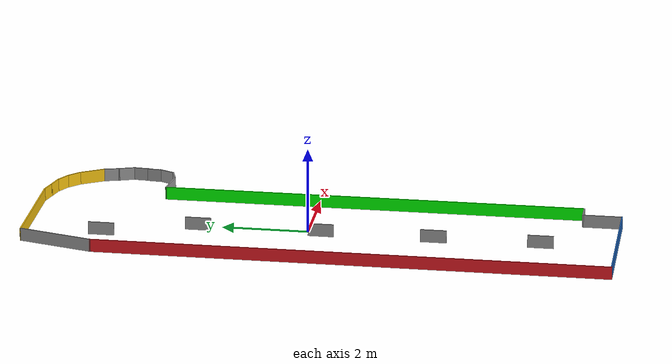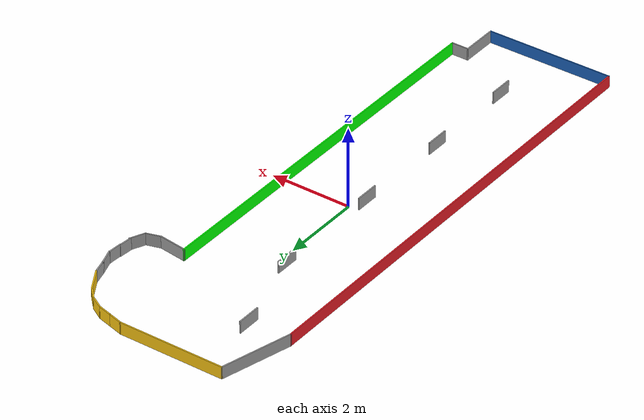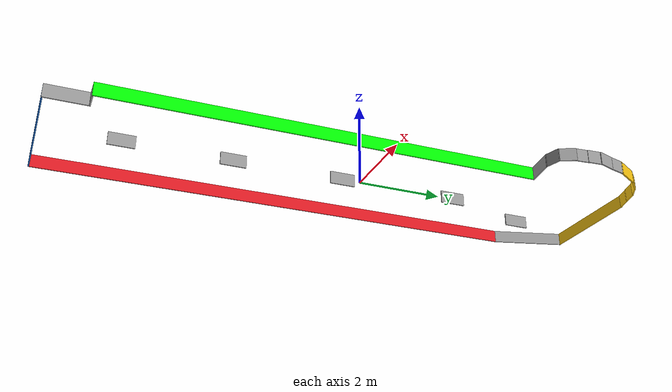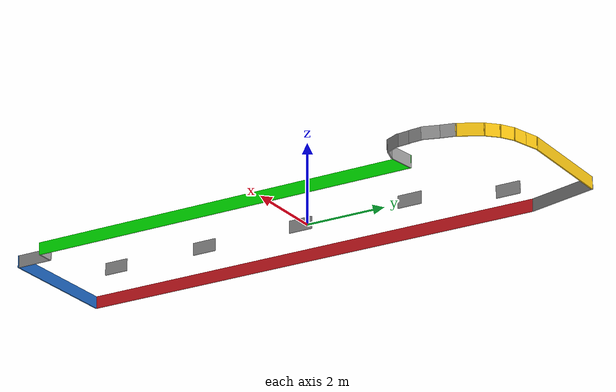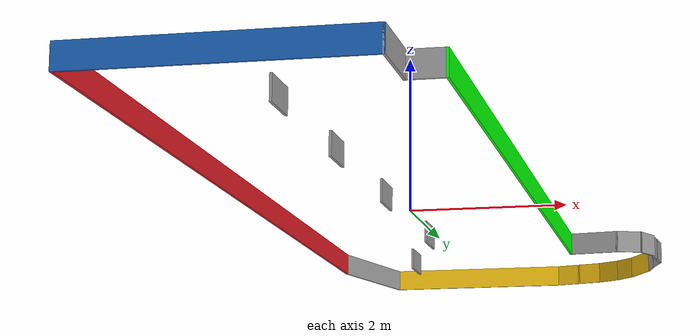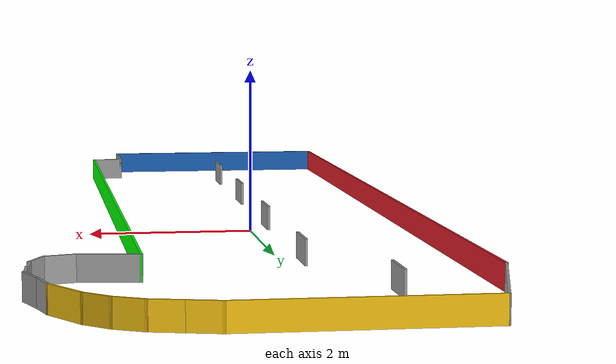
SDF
<?xml version='1.0'?>
<sdf version='1.7'>
  <model name='coloured_mock'>
    <pose>0.45155 -0.357638 0 0 -0 0</pose>
    <link name='Wall_1'>
      <collision name='Wall_1_Collision'>
        <geometry>
          <box>
            <size>11.88 0.03 0.3</size>
          </box>
        </geometry>
        <pose>0 0 0.15 0 -0 0</pose>
      </collision>
      <visual name='Wall_1_Visual'>
        <pose>0 0 0.15 0 -0 0</pose>
        <geometry>
          <box>
            <size>11.88 0.03 0.3</size>
          </box>
        </geometry>
        <material>
          <script>
            <uri>file://media/materials/scripts/gazebo.material</uri>
            <name>Gazebo/Grey</name>
          </script>
          <ambient>0.878431 0.105882 0.141176 1</ambient>
        </material>
        <meta>
          <layer>0</layer>
        </meta>
      </visual>
      <pose>-2.40355 -0.856016 0 0 -0 -1.5708</pose>
    </link>
    <link name='Wall_11'>
      <collision name='Wall_11_Collision'>
        <geometry>
          <box>
            <size>9.88 0.03 0.3</size>
          </box>
        </geometry>
        <pose>0 0 0.15 0 -0 0</pose>
      </collision>
      <visual name='Wall_11_Visual'>
        <pose>0 0 0.15 0 -0 0</pose>
        <geometry>
          <box>
            <size>9.88 0.03 0.3</size>
          </box>
        </geometry>
        <material>
          <script>
            <uri>file://media/materials/scripts/gazebo.material</uri>
            <name>Gazebo/Grey</name>
          </script>
          <ambient>0 1 0 1</ambient>
        </material>
        <meta>
          <layer>0</layer>
        </meta>
      </visual>
      <pose>1.18445 -0.952189 0 0 -0 1.5708</pose>
    </link>
    <link name='Wall_13'>
      <collision name='Wall_13_Collision'>
        <geometry>
          <box>
            <size>1.8 0.03 0.3</size>
          </box>
        </geometry>
        <pose>0 0 0.15 0 -0 0</pose>
      </collision>
      <visual name='Wall_13_Visual'>
        <pose>0 0 0.15 0 -0 0</pose>
        <geometry>
          <box>
            <size>1.8 0.03 0.3</size>
          </box>
        </geometry>
        <material>
          <script>
            <uri>file://media/materials/scripts/gazebo.material</uri>
            <name>Gazebo/Grey</name>
          </script>
          <ambient>1 1 1 1</ambient>
        </material>
        <meta>
          <layer>0</layer>
        </meta>
      </visual>
      <pose>-2.17209 5.92318 0 0 -0 1.30618</pose>
    </link>
    <link name='Wall_15'>
      <collision name='Wall_15_Collision'>
        <geometry>
          <box>
            <size>2.63 0.03 0.3</size>
          </box>
        </geometry>
        <pose>0 0 0.15 0 -0 0</pose>
      </collision>
      <visual name='Wall_15_Visual'>
        <pose>0 0 0.15 0 -0 0</pose>
        <geometry>
          <box>
            <size>2.63 0.03 0.3</size>
          </box>
        </geometry>
        <material>
          <script>
            <uri>file://media/materials/scripts/gazebo.material</uri>
            <name>Gazebo/Grey</name>
          </script>
          <ambient>0.960784 0.760784 0.0666667 1</ambient>
        </material>
        <meta>
          <layer>0</layer>
        </meta>
      </visual>
      <pose>-0.640588 6.77751 0 0 -0 0.000101</pose>
    </link>
    <link name='Wall_25'>
      <collision name='Wall_25_Collision'>
        <geometry>
          <box>
            <size>0.379994 0.03 0.3</size>
          </box>
        </geometry>
        <pose>0 0 0.15 0 -0 0</pose>
      </collision>
      <visual name='Wall_25_Visual'>
        <pose>0 0 0.15 0 -0 0</pose>
        <geometry>
          <box>
            <size>0.379994 0.03 0.3</size>
          </box>
        </geometry>
        <material>
          <script>
            <uri>file://media/materials/scripts/gazebo.material</uri>
            <name>Gazebo/Grey</name>
          </script>
          <ambient>0.960784 0.760784 0.0666667 1</ambient>
        </material>
        <meta>
          <layer>0</layer>
        </meta>
      </visual>
      <pose>0.82845 6.73214 0 0 -0 -0.262995</pose>
    </link>
    <link name='Wall_26'>
      <collision name='Wall_26_Collision'>
        <geometry>
          <box>
            <size>0.379958 0.03 0.3</size>
          </box>
        </geometry>
        <pose>0 0 0.15 0 -0 0</pose>
      </collision>
      <visual name='Wall_26_Visual'>
        <pose>0 0 0.15 0 -0 0</pose>
        <geometry>
          <box>
            <size>0.379958 0.03 0.3</size>
          </box>
        </geometry>
        <material>
          <script>
            <uri>file://media/materials/scripts/gazebo.material</uri>
            <name>Gazebo/Grey</name>
          </script>
          <ambient>0.960784 0.760784 0.0666667 1</ambient>
        </material>
        <meta>
          <layer>0</layer>
        </meta>
      </visual>
      <pose>1.16645 6.64164 0 0 -0 -0.260234</pose>
    </link>
    <link name='Wall_27'>
      <collision name='Wall_27_Collision'>
        <geometry>
          <box>
            <size>0.38028 0.03 0.3</size>
          </box>
        </geometry>
        <pose>0 0 0.15 0 -0 0</pose>
      </collision>
      <visual name='Wall_27_Visual'>
        <pose>0 0 0.15 0 -0 0</pose>
        <geometry>
          <box>
            <size>0.38028 0.03 0.3</size>
          </box>
        </geometry>
        <material>
          <script>
            <uri>file://media/materials/scripts/gazebo.material</uri>
            <name>Gazebo/Grey</name>
          </script>
          <ambient>0.960784 0.760784 0.0666667 1</ambient>
        </material>
        <meta>
          <layer>0</layer>
        </meta>
      </visual>
      <pose>1.48695 6.50914 0 0 -0 -0.523754</pose>
    </link>
    <link name='Wall_28'>
      <collision name='Wall_28_Collision'>
        <geometry>
          <box>
            <size>0.380436 0.03 0.3</size>
          </box>
        </geometry>
        <pose>0 0 0.15 0 -0 0</pose>
      </collision>
      <visual name='Wall_28_Visual'>
        <pose>0 0 0.15 0 -0 0</pose>
        <geometry>
          <box>
            <size>0.380436 0.03 0.3</size>
          </box>
        </geometry>
        <material>
          <script>
            <uri>file://media/materials/scripts/gazebo.material</uri>
            <name>Gazebo/Grey</name>
          </script>
          <ambient>0.960784 0.760784 0.0666667 1</ambient>
        </material>
        <meta>
          <layer>0</layer>
        </meta>
      </visual>
      <pose>1.76245 6.29764 0 0 -0 -0.785398</pose>
    </link>
    <link name='Wall_29'>
      <collision name='Wall_29_Collision'>
        <geometry>
          <box>
            <size>0.629768 0.03 0.3</size>
          </box>
        </geometry>
        <pose>0 0 0.15 0 -0 0</pose>
      </collision>
      <visual name='Wall_29_Visual'>
        <pose>0 0 0.15 0 -0 0</pose>
        <geometry>
          <box>
            <size>0.629768 0.03 0.3</size>
          </box>
        </geometry>
        <material>
          <script>
            <uri>file://media/materials/scripts/gazebo.material</uri>
            <name>Gazebo/Grey</name>
          </script>
          <ambient>0.960784 0.760784 0.0666667 1</ambient>
        </material>
        <meta>
          <layer>0</layer>
        </meta>
      </visual>
      <pose>2.03645 5.91364 0 0 -0 -1.04752</pose>
    </link>
    <link name='Wall_30'>
      <collision name='Wall_30_Collision'>
        <geometry>
          <box>
            <size>0.379777 0.03 0.3</size>
          </box>
        </geometry>
        <pose>0 0 0.15 0 -0 0</pose>
      </collision>
      <visual name='Wall_30_Visual'>
        <pose>0 0 0.15 0 -0 0</pose>
        <geometry>
          <box>
            <size>0.379777 0.03 0.3</size>
          </box>
        </geometry>
        <material>
          <script>
            <uri>file://media/materials/scripts/gazebo.material</uri>
            <name>Gazebo/Grey</name>
          </script>
          <ambient>1 1 1 1</ambient>
        </material>
        <meta>
          <layer>0</layer>
        </meta>
      </visual>
      <pose>2.23145 5.48464 0 0 -0 -1.31056</pose>
    </link>
    <link name='Wall_31'>
      <collision name='Wall_31_Collision'>
        <geometry>
          <box>
            <size>0.426235 0.03 0.3</size>
          </box>
        </geometry>
        <pose>0 0 0.15 0 -0 0</pose>
      </collision>
      <visual name='Wall_31_Visual'>
        <pose>0 0 0.15 0 -0 0</pose>
        <geometry>
          <box>
            <size>0.426235 0.03 0.3</size>
          </box>
        </geometry>
        <material>
          <script>
            <uri>file://media/materials/scripts/gazebo.material</uri>
            <name>Gazebo/Grey</name>
          </script>
          <ambient>1 1 1 1</ambient>
        </material>
        <meta>
          <layer>0</layer>
        </meta>
      </visual>
      <pose>2.3397 5.12789 0 0 -0 -1.24585</pose>
    </link>
    <link name='Wall_32'>
      <collision name='Wall_32_Collision'>
        <geometry>
          <box>
            <size>0.346512 0.03 0.3</size>
          </box>
        </geometry>
        <pose>0 0 0.15 0 -0 0</pose>
      </collision>
      <visual name='Wall_32_Visual'>
        <pose>0 0 0.15 0 -0 0</pose>
        <geometry>
          <box>
            <size>0.346512 0.03 0.3</size>
          </box>
        </geometry>
        <material>
          <script>
            <uri>file://media/materials/scripts/gazebo.material</uri>
            <name>Gazebo/Grey</name>
          </script>
          <ambient>1 1 1 1</ambient>
        </material>
        <meta>
          <layer>0</layer>
        </meta>
      </visual>
      <pose>2.38245 4.78214 0 0 -0 -1.6277</pose>
    </link>
    <link name='Wall_33'>
      <collision name='Wall_33_Collision'>
        <geometry>
          <box>
            <size>0.333573 0.03 0.3</size>
          </box>
        </geometry>
        <pose>0 0 0.15 0 -0 0</pose>
      </collision>
      <visual name='Wall_33_Visual'>
        <pose>0 0 0.15 0 -0 0</pose>
        <geometry>
          <box>
            <size>0.333573 0.03 0.3</size>
          </box>
        </geometry>
        <material>
          <script>
            <uri>file://media/materials/scripts/gazebo.material</uri>
            <name>Gazebo/Grey</name>
          </script>
          <ambient>1 1 1 1</ambient>
        </material>
        <meta>
          <layer>0</layer>
        </meta>
      </visual>
      <pose>2.3492 4.47289 0 0 -0 -1.6549</pose>
    </link>
    <link name='Wall_34'>
      <collision name='Wall_34_Collision'>
        <geometry>
          <box>
            <size>0.401146 0.03 0.3</size>
          </box>
        </geometry>
        <pose>0 0 0.15 0 -0 0</pose>
      </collision>
      <visual name='Wall_34_Visual'>
        <pose>0 0 0.15 0 -0 0</pose>
        <geometry>
          <box>
            <size>0.401146 0.03 0.3</size>
          </box>
        </geometry>
        <material>
          <script>
            <uri>file://media/materials/scripts/gazebo.material</uri>
            <name>Gazebo/Grey</name>
          </script>
          <ambient>1 1 1 1</ambient>
        </material>
        <meta>
          <layer>0</layer>
        </meta>
      </visual>
      <pose>2.2702 4.15314 0 0 -0 -2.00311</pose>
    </link>
    <link name='Wall_35'>
      <collision name='Wall_35_Collision'>
        <geometry>
          <box>
            <size>0.382483 0.03 0.3</size>
          </box>
        </geometry>
        <pose>0 0 0.15 0 -0 0</pose>
      </collision>
      <visual name='Wall_35_Visual'>
        <pose>0 0 0.15 0 -0 0</pose>
        <geometry>
          <box>
            <size>0.382483 0.03 0.3</size>
          </box>
        </geometry>
        <material>
          <script>
            <uri>file://media/materials/scripts/gazebo.material</uri>
            <name>Gazebo/Grey</name>
          </script>
          <ambient>1 1 1 1</ambient>
        </material>
        <meta>
          <layer>0</layer>
        </meta>
      </visual>
      <pose>2.02345 3.93464 0 0 -0 -2.85394</pose>
    </link>
    <link name='Wall_36'>
      <collision name='Wall_36_Collision'>
        <geometry>
          <box>
            <size>0.705803 0.03 0.3</size>
          </box>
        </geometry>
        <pose>0 0 0.15 0 -0 0</pose>
      </collision>
      <visual name='Wall_36_Visual'>
        <pose>0 0 0.15 0 -0 0</pose>
        <geometry>
          <box>
            <size>0.705803 0.03 0.3</size>
          </box>
        </geometry>
        <material>
          <script>
            <uri>file://media/materials/scripts/gazebo.material</uri>
            <name>Gazebo/Grey</name>
          </script>
          <ambient>1 1 1 1</ambient>
        </material>
        <meta>
          <layer>0</layer>
        </meta>
      </visual>
      <pose>1.51945 3.92864 0 0 -0 3.011</pose>
    </link>
    <link name='Wall_38'>
      <collision name='Wall_38_Collision'>
        <geometry>
          <box>
            <size>0.6 0.03 0.3</size>
          </box>
        </geometry>
        <pose>0 0 0.15 0 -0 0</pose>
      </collision>
      <visual name='Wall_38_Visual'>
        <pose>0 0 0.15 0 -0 0</pose>
        <geometry>
          <box>
            <size>0.6 0.03 0.3</size>
          </box>
        </geometry>
        <material>
          <script>
            <uri>file://media/materials/scripts/gazebo.material</uri>
            <name>Gazebo/Grey</name>
          </script>
          <ambient>1 1 1 1</ambient>
        </material>
        <meta>
          <layer>0</layer>
        </meta>
      </visual>
      <pose>-0.697979 -5.0354 0 0 -0 -1.5708</pose>
    </link>
    <link name='Wall_40'>
      <collision name='Wall_40_Collision'>
        <geometry>
          <box>
            <size>0.6 0.03 0.3</size>
          </box>
        </geometry>
        <pose>0 0 0.15 0 -0 0</pose>
      </collision>
      <visual name='Wall_40_Visual'>
        <pose>0 0 0.15 0 -0 0</pose>
        <geometry>
          <box>
            <size>0.6 0.03 0.3</size>
          </box>
        </geometry>
        <material>
          <script>
            <uri>file://media/materials/scripts/gazebo.material</uri>
            <name>Gazebo/Grey</name>
          </script>
          <ambient>1 1 1 1</ambient>
        </material>
        <meta>
          <layer>0</layer>
        </meta>
      </visual>
      <pose>-0.701804 -2.58061 0 0 -0 -1.5708</pose>
    </link>
    <link name='Wall_42'>
      <collision name='Wall_42_Collision'>
        <geometry>
          <box>
            <size>0.6 0.03 0.3</size>
          </box>
        </geometry>
        <pose>0 0 0.15 0 -0 0</pose>
      </collision>
      <visual name='Wall_42_Visual'>
        <pose>0 0 0.15 0 -0 0</pose>
        <geometry>
          <box>
            <size>0.6 0.03 0.3</size>
          </box>
        </geometry>
        <material>
          <script>
            <uri>file://media/materials/scripts/gazebo.material</uri>
            <name>Gazebo/Grey</name>
          </script>
          <ambient>1 1 1 1</ambient>
        </material>
        <meta>
          <layer>0</layer>
        </meta>
      </visual>
      <pose>-0.685275 2.87918 0 0 -0 -1.5708</pose>
    </link>
    <link name='Wall_44'>
      <collision name='Wall_44_Collision'>
        <geometry>
          <box>
            <size>0.6 0.03 0.3</size>
          </box>
        </geometry>
        <pose>0 0 0.15 0 -0 0</pose>
      </collision>
      <visual name='Wall_44_Visual'>
        <pose>0 0 0.15 0 -0 0</pose>
        <geometry>
          <box>
            <size>0.6 0.03 0.3</size>
          </box>
        </geometry>
        <material>
          <script>
            <uri>file://media/materials/scripts/gazebo.material</uri>
            <name>Gazebo/Grey</name>
          </script>
          <ambient>1 1 1 1</ambient>
        </material>
        <meta>
          <layer>0</layer>
        </meta>
      </visual>
      <pose>-1.30786 5.02908 0 0 -0 -1.5708</pose>
    </link>
    <link name='Wall_46'>
      <collision name='Wall_46_Collision'>
        <geometry>
          <box>
            <size>0.6 0.03 0.3</size>
          </box>
        </geometry>
        <pose>0 0 0.15 0 -0 0</pose>
      </collision>
      <visual name='Wall_46_Visual'>
        <pose>0 0 0.15 0 -0 0</pose>
        <geometry>
          <box>
            <size>0.6 0.03 0.3</size>
          </box>
        </geometry>
        <material>
          <script>
            <uri>file://media/materials/scripts/gazebo.material</uri>
            <name>Gazebo/Grey</name>
          </script>
          <ambient>1 1 1 1</ambient>
        </material>
        <meta>
          <layer>0</layer>
        </meta>
      </visual>
      <pose>-0.692226 0.022149 0 0 -0 -1.5708</pose>
    </link>
    <link name='Wall_5'>
      <collision name='Wall_5_Collision'>
        <geometry>
          <box>
            <size>3.2 0.03 0.3</size>
          </box>
        </geometry>
        <pose>0 0 0.15 0 -0 0</pose>
      </collision>
      <visual name='Wall_5_Visual'>
        <pose>0 0 0.15 0 -0 0</pose>
        <geometry>
          <box>
            <size>3.2 0.03 0.3</size>
          </box>
        </geometry>
        <material>
          <script>
            <uri>file://media/materials/scripts/gazebo.material</uri>
            <name>Gazebo/Grey</name>
          </script>
          <ambient>0.101961 0.372549 0.705882 1</ambient>
        </material>
        <meta>
          <layer>0</layer>
        </meta>
      </visual>
      <pose>-0.818554 -6.78102 0 0 -0 0</pose>
    </link>
    <link name='Wall_7'>
      <collision name='Wall_7_Collision'>
        <geometry>
          <box>
            <size>0.934 0.03 0.3</size>
          </box>
        </geometry>
        <pose>0 0 0.15 0 -0 0</pose>
      </collision>
      <visual name='Wall_7_Visual'>
        <pose>0 0 0.15 0 -0 0</pose>
        <geometry>
          <box>
            <size>0.934 0.03 0.3</size>
          </box>
        </geometry>
        <material>
          <script>
            <uri>file://media/materials/scripts/gazebo.material</uri>
            <name>Gazebo/Grey</name>
          </script>
          <ambient>1 1 1 1</ambient>
        </material>
        <meta>
          <layer>0</layer>
        </meta>
      </visual>
      <pose>0.766446 -6.32902 0 0 -0 1.5708</pose>
    </link>
    <link name='Wall_9'>
      <collision name='Wall_9_Collision'>
        <geometry>
          <box>
            <size>0.448 0.03 0.3</size>
          </box>
        </geometry>
        <pose>0 0 0.15 0 -0 0</pose>
      </collision>
      <visual name='Wall_9_Visual'>
        <pose>0 0 0.15 0 -0 0</pose>
        <geometry>
          <box>
            <size>0.448 0.03 0.3</size>
          </box>
        </geometry>
        <material>
          <script>
            <uri>file://media/materials/scripts/gazebo.material</uri>
            <name>Gazebo/Grey</name>
          </script>
          <ambient>1 1 1 1</ambient>
        </material>
        <meta>
          <layer>0</layer>
        </meta>
      </visual>
      <pose>0.975446 -5.87702 0 0 -0 0</pose>
    </link>
    <static>1</static>
  </model>
</sdf>
